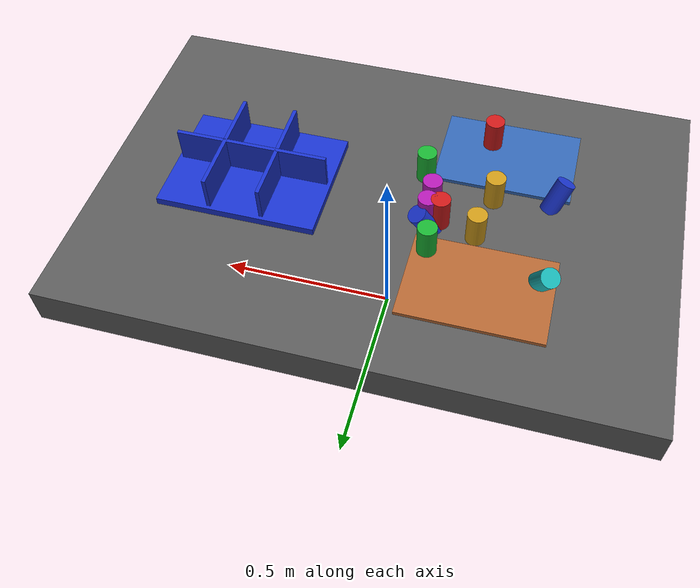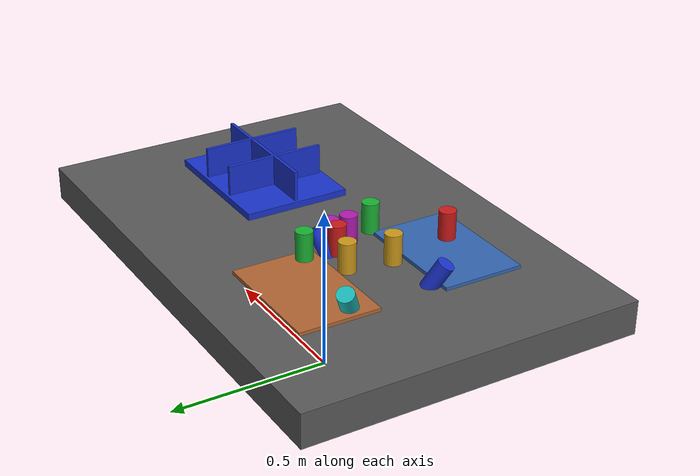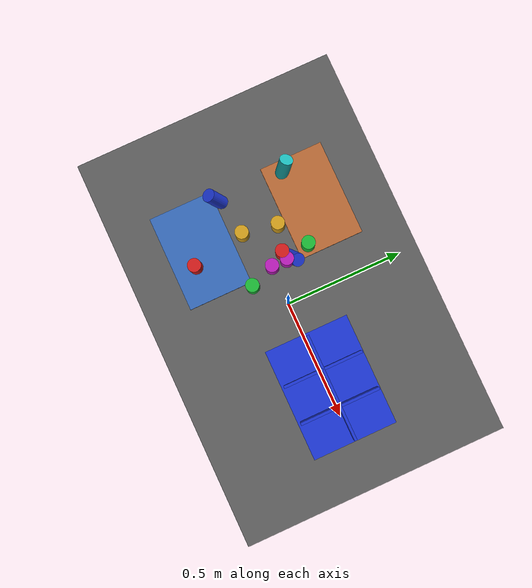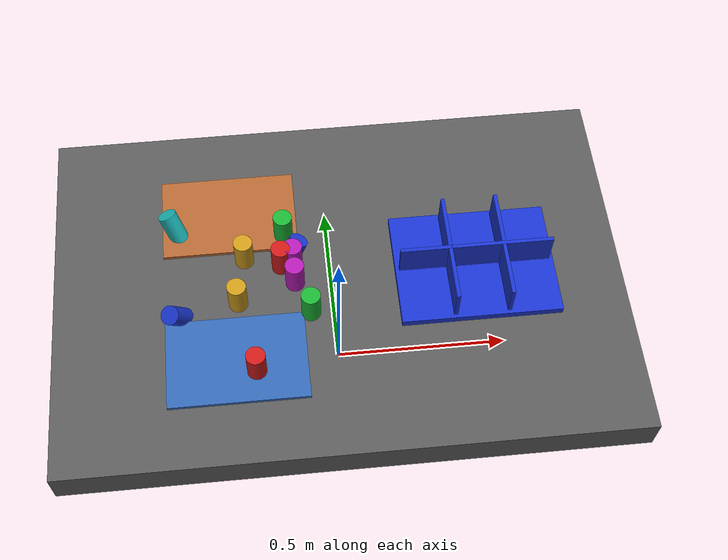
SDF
<?xml version="1.0" ?>
<sdf version="1.9">
  <!-- Standalone M1B scene.  The controller-backed Panda is spawned by the
       existing launch path; this file never alters the frozen M1A cube world. -->
  <world name="industrial_cylinder_v1">
    <physics name="bullet" type="bullet"><max_step_size>0.001</max_step_size><real_time_factor>1.0</real_time_factor></physics>
    <plugin name="gz::sim::systems::Physics" filename="gz-sim-physics-system"><engine><filename>gz-physics-bullet-featherstone-plugin</filename></engine></plugin>
    <plugin name="gz::sim::systems::UserCommands" filename="gz-sim-user-commands-system"/>
    <plugin name="gz::sim::systems::SceneBroadcaster" filename="gz-sim-scene-broadcaster-system"/>
    <plugin name="gz::sim::systems::Sensors" filename="gz-sim-sensors-system"><render_engine>ogre2</render_engine></plugin>
    <gravity>0 0 -9.81</gravity>
    <light type="directional" name="industrial_light"><pose>0 0 5 0 0 0</pose><direction>-0.3 0.2 -0.9</direction><diffuse>0.9 0.9 0.9 1</diffuse></light>
    <model name="industrial_work_table"><static>true</static><link name="link"><pose>0 0 0.4 0 0 0</pose><collision name="collision"><geometry><box><size>1.5 1.0 0.1</size></box></geometry></collision><visual name="visual"><geometry><box><size>1.5 1.0 0.1</size></box></geometry><material><diffuse>0.35 0.35 0.35 1</diffuse></material></visual></link></model>
    <model name="camera_fixture"><static>true</static><link name="camera_rgbd"><pose>-0.80 -0.80 1.40 0 0.77 0.93</pose><sensor name="front_rgbd" type="rgbd_camera"><always_on>1</always_on><update_rate>15</update_rate><topic>/xh/camera/rgbd</topic><camera><horizontal_fov>1.047</horizontal_fov><image><width>640</width><height>480</height><format>R8G8B8</format></image><clip><near>0.1</near><far>4.0</far></clip></camera></sensor></link></model>
    <model name="incoming_zone_a"><static>true</static><link name="link"><pose>-0.28 -0.22 0.455 0 0 0</pose><visual name="visual"><geometry><box><size>0.36 0.24 0.01</size></box></geometry><material><diffuse>0.2 0.4 0.7 1</diffuse></material></visual></link></model>
    <model name="incoming_zone_b"><static>true</static><link name="link"><pose>-0.28 0.22 0.455 0 0 0</pose><visual name="visual"><geometry><box><size>0.36 0.24 0.01</size></box></geometry><material><diffuse>0.7 0.4 0.2 1</diffuse></material></visual></link></model>
    <!-- M1B_RANDOM_PARTS_BEGIN -->
    <model name="cylinder_01"><pose>-0.2303 -0.2579 0.5000 0.0000 0.0000 -2.9235</pose><link name="link"><inertial><mass>0.06</mass></inertial><collision name="collision"><geometry><cylinder><radius>0.025</radius><length>0.09</length></cylinder></geometry></collision><visual name="visual"><geometry><cylinder><radius>0.025</radius><length>0.09</length></cylinder></geometry><material><diffuse>0.800 0.100 0.100 1</diffuse><specular>0.15 0.15 0.15 1</specular></material></visual></link></model>
    <model name="cylinder_02"><pose>-0.0809 -0.1015 0.5000 3.1416 0.0000 2.2661</pose><link name="link"><inertial><mass>0.06</mass></inertial><collision name="collision"><geometry><cylinder><radius>0.025</radius><length>0.09</length></cylinder></geometry></collision><visual name="visual"><geometry><cylinder><radius>0.025</radius><length>0.09</length></cylinder></geometry><material><diffuse>0.100 0.700 0.200 1</diffuse><specular>0.15 0.15 0.15 1</specular></material></visual></link></model>
    <model name="cylinder_03"><pose>-0.1168 0.0723 0.4800 0.4500 -0.3000 2.6516</pose><link name="link"><inertial><mass>0.06</mass></inertial><collision name="collision"><geometry><cylinder><radius>0.025</radius><length>0.09</length></cylinder></geometry></collision><visual name="visual"><geometry><cylinder><radius>0.025</radius><length>0.09</length></cylinder></geometry><material><diffuse>0.100 0.200 0.800 1</diffuse><specular>0.15 0.15 0.15 1</specular></material></visual></link></model>
    <model name="cylinder_04"><pose>-0.2675 -0.0578 0.5000 0.0000 0.0000 -1.1651</pose><link name="link"><inertial><mass>0.06</mass></inertial><collision name="collision"><geometry><cylinder><radius>0.025</radius><length>0.09</length></cylinder></geometry></collision><visual name="visual"><geometry><cylinder><radius>0.025</radius><length>0.09</length></cylinder></geometry><material><diffuse>0.800 0.600 0.100 1</diffuse><specular>0.15 0.15 0.15 1</specular></material></visual></link></model>
    <model name="cylinder_05"><pose>-0.1157 -0.0094 0.5000 3.1416 0.0000 2.6017</pose><link name="link"><inertial><mass>0.06</mass></inertial><collision name="collision"><geometry><cylinder><radius>0.025</radius><length>0.09</length></cylinder></geometry></collision><visual name="visual"><geometry><cylinder><radius>0.025</radius><length>0.09</length></cylinder></geometry><material><diffuse>0.700 0.100 0.700 1</diffuse><specular>0.15 0.15 0.15 1</specular></material></visual></link></model>
    <model name="cylinder_06"><pose>-0.4267 0.1783 0.4800 0.4500 -0.3000 -1.8973</pose><link name="link"><inertial><mass>0.06</mass></inertial><collision name="collision"><geometry><cylinder><radius>0.025</radius><length>0.09</length></cylinder></geometry></collision><visual name="visual"><geometry><cylinder><radius>0.025</radius><length>0.09</length></cylinder></geometry><material><diffuse>0.100 0.700 0.700 1</diffuse><specular>0.15 0.15 0.15 1</specular></material></visual></link></model>
    <model name="cylinder_07"><pose>-0.1483 0.0450 0.5000 0.0000 0.0000 0.4903</pose><link name="link"><inertial><mass>0.06</mass></inertial><collision name="collision"><geometry><cylinder><radius>0.025</radius><length>0.09</length></cylinder></geometry></collision><visual name="visual"><geometry><cylinder><radius>0.025</radius><length>0.09</length></cylinder></geometry><material><diffuse>0.800 0.100 0.100 1</diffuse><specular>0.15 0.15 0.15 1</specular></material></visual></link></model>
    <model name="cylinder_08"><pose>-0.1361 0.1412 0.5000 3.1416 0.0000 -1.8223</pose><link name="link"><inertial><mass>0.06</mass></inertial><collision name="collision"><geometry><cylinder><radius>0.025</radius><length>0.09</length></cylinder></geometry></collision><visual name="visual"><geometry><cylinder><radius>0.025</radius><length>0.09</length></cylinder></geometry><material><diffuse>0.100 0.700 0.200 1</diffuse><specular>0.15 0.15 0.15 1</specular></material></visual></link></model>
    <model name="cylinder_09"><pose>-0.4250 -0.0932 0.4800 0.4500 -0.3000 -0.1785</pose><link name="link"><inertial><mass>0.06</mass></inertial><collision name="collision"><geometry><cylinder><radius>0.025</radius><length>0.09</length></cylinder></geometry></collision><visual name="visual"><geometry><cylinder><radius>0.025</radius><length>0.09</length></cylinder></geometry><material><diffuse>0.100 0.200 0.800 1</diffuse><specular>0.15 0.15 0.15 1</specular></material></visual></link></model>
    <model name="cylinder_10"><pose>-0.2445 0.0721 0.5000 0.0000 0.0000 3.1004</pose><link name="link"><inertial><mass>0.06</mass></inertial><collision name="collision"><geometry><cylinder><radius>0.025</radius><length>0.09</length></cylinder></geometry></collision><visual name="visual"><geometry><cylinder><radius>0.025</radius><length>0.09</length></cylinder></geometry><material><diffuse>0.800 0.600 0.100 1</diffuse><specular>0.15 0.15 0.15 1</specular></material></visual></link></model>
    <model name="cylinder_11"><pose>-0.1164 0.0487 0.5000 3.1416 0.0000 -2.0998</pose><link name="link"><inertial><mass>0.06</mass></inertial><collision name="collision"><geometry><cylinder><radius>0.025</radius><length>0.09</length></cylinder></geometry></collision><visual name="visual"><geometry><cylinder><radius>0.025</radius><length>0.09</length></cylinder></geometry><material><diffuse>0.700 0.100 0.700 1</diffuse><specular>0.15 0.15 0.15 1</specular></material></visual></link></model>
    <!-- M1B_RANDOM_PARTS_END -->
    <model name="blue_partition_bin"><static>true</static><pose>0.36 0 0.45 0 0 0</pose><link name="link"><collision name="floor"><pose>0 0 0.01 0 0 0</pose><geometry><box><size>0.42 0.32 0.02</size></box></geometry></collision><visual name="floor_visual"><pose>0 0 0.01 0 0 0</pose><geometry><box><size>0.42 0.32 0.02</size></box></geometry><material><diffuse>0.1 0.2 0.8 1</diffuse></material></visual><visual name="row_divider"><pose>0 0 0.06 0 0 0</pose><geometry><box><size>0.40 0.01 0.10</size></box></geometry><material><diffuse>0.1 0.2 0.8 1</diffuse></material></visual><visual name="col_divider_a"><pose>-0.07 0 0.06 0 0 0</pose><geometry><box><size>0.01 0.30 0.10</size></box></geometry><material><diffuse>0.1 0.2 0.8 1</diffuse></material></visual><visual name="col_divider_b"><pose>0.07 0 0.06 0 0 0</pose><geometry><box><size>0.01 0.30 0.10</size></box></geometry><material><diffuse>0.1 0.2 0.8 1</diffuse></material></visual></link></model>
    <!-- Reserved only: second table, bin transport corridor, stackable-bin
         collision volume, and second arm mounting namespace. -->
  </world>
</sdf>
